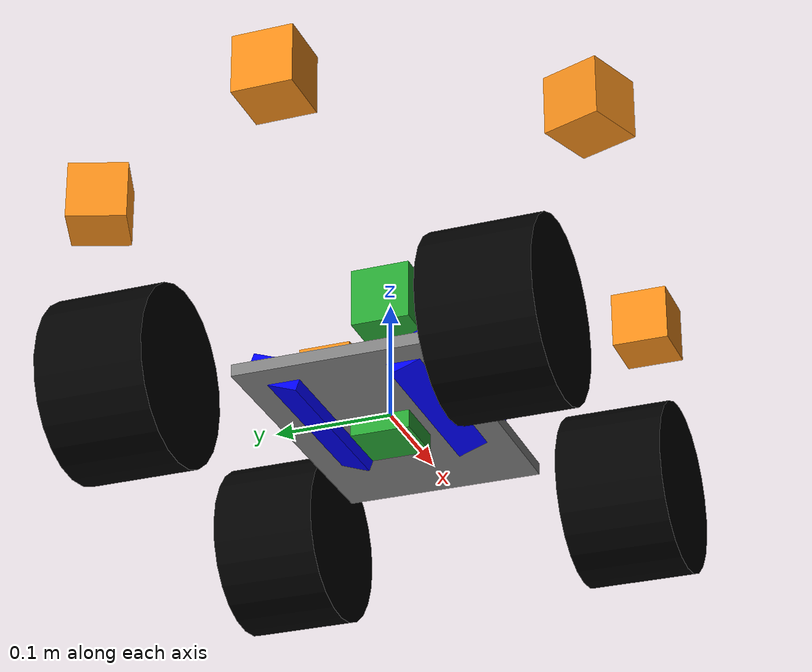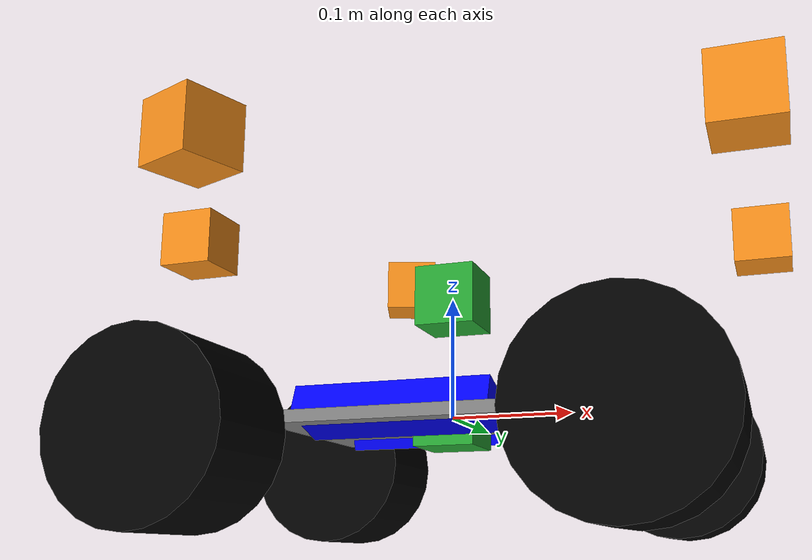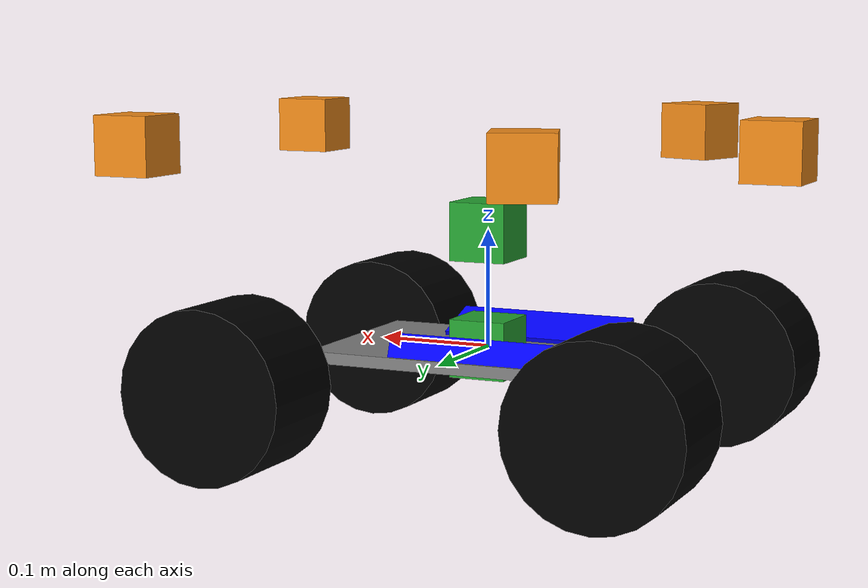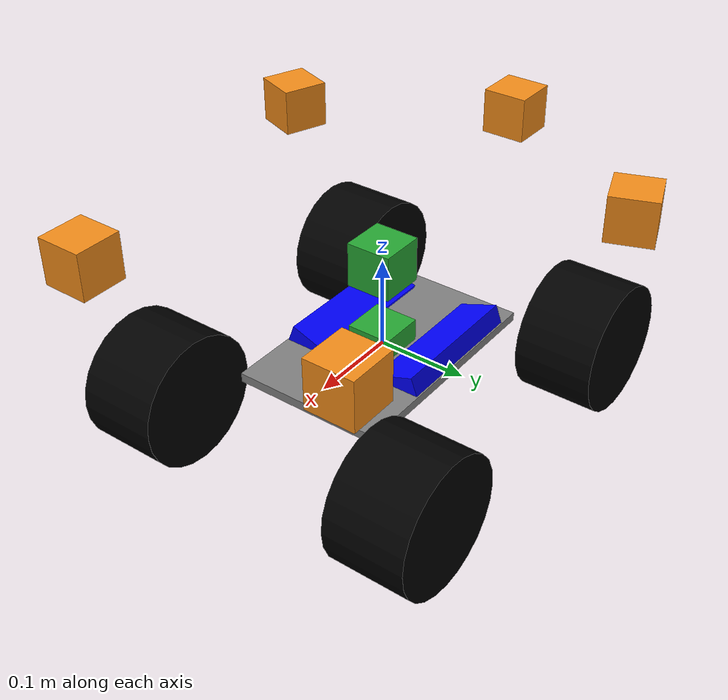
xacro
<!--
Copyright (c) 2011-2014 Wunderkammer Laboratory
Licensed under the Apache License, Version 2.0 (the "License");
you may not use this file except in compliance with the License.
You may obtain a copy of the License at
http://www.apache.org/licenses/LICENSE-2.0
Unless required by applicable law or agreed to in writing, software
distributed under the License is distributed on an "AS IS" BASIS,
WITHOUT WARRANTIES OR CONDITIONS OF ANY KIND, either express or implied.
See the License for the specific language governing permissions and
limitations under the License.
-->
<?xml version="1.0"?>

<robot name="em_3905" xmlns:xacro="http://www.ros.org/wiki/xacro">
  <!-- Degree-to-radian conversions -->
  <xacro:property name="degrees_45" value="0.785398163"/>
  <xacro:property name="degrees_90" value="1.57079633"/>

  <xacro:property name="cameraSize" value="0.05"/>
  <xacro:property name="cameraMass" value="0.1"/>

  <!-- chassis_length is measured along the x axis, chassis_width
       along the y axis, and chassis_height along the z axis. -->
  <xacro:property name="chassis_length" value="0.258"/>
  <xacro:property name="chassis_width" value="0.168"/>
  <xacro:property name="chassis_height" value="0.01"/>
  <xacro:property name="chassis_mass" value="2.788"/>

  <xacro:property name="battery_x_offset" value="0.055"/>
  <xacro:property name="battery_dist" value="0.065"/>
  <xacro:property name="battery_comp_depth" value="0.02"/>
  <xacro:property name="battery_comp_angle" value="0.34906585"/>
  <xacro:property name="battery_length" value="0.16"/>
  <xacro:property name="battery_width" value="0.047"/>
  <xacro:property name="battery_height" value="0.024"/>
  <xacro:property name="battery_mass" value="0.5025"/>

  <xacro:property name="hub_dia" value="0.09652"/>
  <xacro:property name="tire_dia" value="0.14605"/>
  <xacro:property name="tire_width" value="0.0889"/>
  <xacro:property name="hex_hub_depth" value="0.01445"/>
  <xacro:property name="wheel_mass" value="0.29"/>

  <xacro:property name="wheelbase" value="0.335"/>
  <xacro:property name="hex_hub_dist" value="0.365"/>
  <xacro:property name="axle_length" value="0.03"/>
  <xacro:property name="wheel_travel" value="0.084"/>
  <xacro:property name="shock_z_offset" value="0.0655"/>

  <xacro:property name="shock_eff_limit" value="12.5106"/>
  <xacro:property name="shock_vel_limit" value="1000"/>

  <xacro:property name="axle_eff_limit" value="5.12766"/>
  <xacro:property name="axle_vel_limit" value="244.8696"/>

  <!-- These constants are used to simulate a Traxxas 2056 servo operated at
       6 V. servo_stall_torque is measured in N m. servo_no_load_speed is
       measured in rad/s. -->
  <xacro:property name="servo_stall_torque" value="0.5649"/>
  <xacro:property name="servo_no_load_speed" value="4.553"/>

  <material name="battery_mat">
    <color rgba="0 0 1 1"/>
  </material>
  <material name="chassis_mat">
    <color rgba="0.5 0.5 0.5 1"/>
  </material>
  <material name="tire_mat">
    <color rgba="0 0 0 1"/>
  </material>

  <!-- Null inertial element. This is needed to make the model work with
       Gazebo. -->
  <xacro:macro name="null_inertial">
    <inertial>
      <mass value="0.001"/>
      <inertia ixx="0.001" ixy="0" ixz="0" iyy="0.001" iyz="0" izz="0.001"/>
    </inertial>
  </xacro:macro>

  <!-- Inertia of a solid cuboid. Width is measured along the x axis, depth
       along the y axis, and height along the z axis. -->
  <xacro:macro name="solid_cuboid_inertial"
               params="width depth height mass *origin">
    <inertial>
      <xacro:insert_block name="origin"/>
      <mass value="${mass}"/>
      <inertia ixx="${mass * (depth * depth + height * height) / 12}"
               ixy="0" ixz="0"
               iyy="${mass * (width * width + height * height) / 12}"
               iyz="0"
               izz="${mass * (width * width + depth * depth) / 12}"/>
    </inertial>
  </xacro:macro>

  <xacro:macro name="thick_walled_tube_inertial"
               params="inner_rad outer_rad height mass">
    <inertial>
      <mass value="${mass}"/>
      <inertia ixx="${(1 / 12) * mass * (3 * (inner_rad * inner_rad +
                    outer_rad * outer_rad) + height * height)}"
               ixy="0" ixz="0"
               iyy="${(1 / 12) * mass * (3 * (inner_rad * inner_rad +
                    outer_rad * outer_rad) + height * height)}"
               iyz="0"
               izz="${mass * (inner_rad * inner_rad +
                    outer_rad * outer_rad) / 2}"/>
    </inertial>
  </xacro:macro>

  <!-- Battery -->
  <xacro:macro name="battery" params="prefix reflect">
    <joint name="chassis_to_${prefix}_battery" type="fixed">
      <parent link="chassis"/>
      <child link="${prefix}_battery_offset"/>
      <origin xyz="${battery_x_offset - battery_length / 2}
                   ${reflect * battery_dist / 2}
                   0"
              rpy="${reflect * battery_comp_angle} 0 0"/>
    </joint>

    <link name="${prefix}_battery_offset">
      <xacro:null_inertial/>
    </link>

    <joint name="offset_to_${prefix}_battery" type="fixed">
      <parent link="${prefix}_battery_offset"/>
      <child link="${prefix}_battery"/>
      <origin xyz="0
                   ${reflect * battery_width / 2}
                   ${(battery_height / 2) - battery_comp_depth}"/>
    </joint>

    <link name="${prefix}_battery">
      <visual>
        <geometry>
          <box size="${battery_length} ${battery_width} ${battery_height}"/>
        </geometry>
        <material name="battery_mat"/>
      </visual>

      <collision>
        <geometry>
          <box size="${battery_length} ${battery_width} ${battery_height}"/>
        </geometry>
      </collision>

      <xacro:solid_cuboid_inertial
         width="${battery_length}" depth="${battery_width}"
         height="${battery_height}" mass="${battery_mass}">
        <origin/>
      </xacro:solid_cuboid_inertial>
    </link>

    <gazebo reference="${prefix}_battery">
      <material>Gazebo/Blue</material>
    </gazebo>
  </xacro:macro>

  <!-- Shock absorber -->
  <xacro:macro name="shock"
               params="lr_prefix fr_prefix lr_reflect fr_reflect child">
    <joint name="${lr_prefix}_${fr_prefix}_shock" type="prismatic">
      <parent link="chassis"/>
      <child link="${child}"/>

      <origin xyz="${fr_reflect * wheelbase / 2}
                   ${lr_reflect * ((hex_hub_dist / 2) - axle_length)}
                   ${(wheel_travel / 2) - shock_z_offset}"/>
      <axis xyz="0 0 -1"/>
      <limit lower="${-wheel_travel / 2}" upper="${wheel_travel / 2}"
             effort="${shock_eff_limit}" velocity="${shock_vel_limit}"/>
    </joint>
    <transmission name="${lr_prefix}_${fr_prefix}_shock_trans">
      <type>transmission_interface/SimpleTransmission</type>
      <joint name="${lr_prefix}_${fr_prefix}_shock">
        <hardwareInterface>EffortJointInterface</hardwareInterface>
      </joint>
      <actuator name="${lr_prefix}_${fr_prefix}_shock_act">
        <!-- This hardwareInterface element exists for compatibility
             with ROS Hydro. -->
        <hardwareInterface>EffortJointInterface</hardwareInterface>
        <mechanicalReduction>1</mechanicalReduction>
      </actuator>
    </transmission>
  </xacro:macro>

  <!-- The "wheel" macro defines an axle carrier, axle, and wheel. -->
  <xacro:macro name="wheel" params="lr_prefix fr_prefix lr_reflect">
    <link name="${lr_prefix}_${fr_prefix}_axle_carrier">
      <xacro:null_inertial/>
    </link>

    <!-- The left and right axles have the same axis so that identical
         rotation values cause the wheels to rotate in the same direction. -->
    <joint name="${lr_prefix}_${fr_prefix}_axle" type="continuous">
      <parent link="${lr_prefix}_${fr_prefix}_axle_carrier"/>
      <child link="${lr_prefix}_${fr_prefix}_wheel"/>
      <origin rpy="${degrees_90} 0 0"/>
      <axis xyz="0 0 -1"/>
      <limit effort="${axle_eff_limit}" velocity="${axle_vel_limit}"/>
    </joint>
    <transmission name="${lr_prefix}_${fr_prefix}_axle_trans">
      <type>transmission_interface/SimpleTransmission</type>
      <joint name="${lr_prefix}_${fr_prefix}_axle">
        <hardwareInterface>EffortJointInterface</hardwareInterface>
      </joint>
      <actuator name="${lr_prefix}_${fr_prefix}_axle_act">
        <!-- This hardwareInterface element exists for compatibility
             with ROS Hydro. -->
        <hardwareInterface>EffortJointInterface</hardwareInterface>
        <mechanicalReduction>1</mechanicalReduction>
      </actuator>
    </transmission>

    <link name="${lr_prefix}_${fr_prefix}_wheel">
      <visual>
        <origin xyz="0
                     ${lr_reflect * (axle_length - (tire_width /
                     2 - hex_hub_depth))}
                     0"/>
        <geometry>
          <cylinder radius="${tire_dia / 2}" length="${tire_width}"/>
        </geometry>
        <material name="tire_mat"/>
      </visual>

      <collision>
        <origin xyz="0
                     ${lr_reflect * (axle_length - (tire_width /
                     2 - hex_hub_depth))}
                     0"/>
        <geometry>
          <cylinder radius="${tire_dia / 2}" length="${tire_width}"/>
        </geometry>
      </collision>

      <xacro:thick_walled_tube_inertial
          inner_rad="${hub_dia / 2}" outer_rad="${tire_dia / 2}"
          height="${tire_width}" mass="${wheel_mass}"/>
    </link>

    <gazebo reference="${lr_prefix}_${fr_prefix}_wheel">
      <material>Gazebo/Black</material>
    </gazebo>
  </xacro:macro>

  <!-- Front wheel -->
  <xacro:macro name="front_wheel"
               params="lr_prefix fr_prefix lr_reflect fr_reflect">
    <xacro:shock lr_prefix="${lr_prefix}" fr_prefix="${fr_prefix}"
                 lr_reflect="${lr_reflect}" fr_reflect="${fr_reflect}"
                 child="${lr_prefix}_steering_link"/>

    <link name="${lr_prefix}_steering_link">
      <xacro:null_inertial/>
    </link>

    <joint name="${lr_prefix}_steering_joint" type="revolute">
      <parent link="${lr_prefix}_steering_link"/>
      <child link="${lr_prefix}_${fr_prefix}_axle_carrier"/>
      <axis xyz="0 0 1"/>
      <limit lower="${-degrees_45}" upper="${degrees_45}"
             effort="${servo_stall_torque}" velocity="${servo_no_load_speed}"/>
    </joint>
    <transmission name="${lr_prefix}_steering_trans">
      <type>transmission_interface/SimpleTransmission</type>
      <joint name="${lr_prefix}_steering_joint">
        <hardwareInterface>EffortJointInterface</hardwareInterface>
      </joint>
      <actuator name="${lr_prefix}_steering_act">
        <!-- This hardwareInterface element exists for compatibility
             with ROS Hydro. -->
        <hardwareInterface>EffortJointInterface</hardwareInterface>
        <mechanicalReduction>1</mechanicalReduction>
      </actuator>
    </transmission>

    <xacro:wheel lr_prefix="${lr_prefix}" fr_prefix="${fr_prefix}"
                 lr_reflect="${lr_reflect}"/>
  </xacro:macro>

  <!-- Rear wheel -->
  <xacro:macro name="rear_wheel"
               params="lr_prefix fr_prefix lr_reflect fr_reflect">
    <xacro:shock lr_prefix="${lr_prefix}" fr_prefix="${fr_prefix}"
                 lr_reflect="${lr_reflect}" fr_reflect="${fr_reflect}"
                 child="${lr_prefix}_${fr_prefix}_axle_carrier"/>
    <xacro:wheel lr_prefix="${lr_prefix}" fr_prefix="${fr_prefix}"
                 lr_reflect="${lr_reflect}"/>
  </xacro:macro>

  <!-- base_link must have geometry so that its axes can be displayed in
       rviz. -->
  <link name="base_link">
    <visual>
      <geometry>
        <box size="0.01 0.01 0.01"/>
      </geometry>
      <material name="chassis_mat"/>
    </visual>
  </link>
  <gazebo reference="base_link">
    <material>Gazebo/Grey</material>
  </gazebo>

  <!-- Chassis -->
  <link name="chassis">
    <visual>
      <origin xyz="0 0 ${-chassis_height / 2}"/>
      <geometry>
        <box size="${chassis_length} ${chassis_width} ${chassis_height}"/>
      </geometry>
      <material name="chassis_mat"/>
    </visual>

    <collision>
      <origin xyz="0 0 ${-chassis_height / 2}"/>
      <geometry>
        <box size="${chassis_length} ${chassis_width} ${chassis_height}"/>
      </geometry>
    </collision>

    <xacro:solid_cuboid_inertial
        width="${chassis_length}" depth="${chassis_width}"
        height="${chassis_height}" mass="${chassis_mass}">
      <origin xyz="0 0 ${-chassis_height / 2}"/>
    </xacro:solid_cuboid_inertial>
  </link>
  <gazebo reference="chassis">
    <material>Gazebo/Grey</material>
  </gazebo>

  <joint name="base_link_to_chassis" type="fixed">
    <parent link="base_link"/>
    <child link="chassis"/>
  </joint>

  <!-- Batteries -->
  <xacro:battery prefix="left" reflect="1"/>
  <xacro:battery prefix="right" reflect="-1"/>

  <!-- Wheels -->
  <xacro:front_wheel lr_prefix="left" fr_prefix="front"
                     lr_reflect="1" fr_reflect="1"/>
  <xacro:front_wheel lr_prefix="right" fr_prefix="front"
                     lr_reflect="-1" fr_reflect="1"/>
  <xacro:rear_wheel lr_prefix="left" fr_prefix="rear"
                    lr_reflect="1" fr_reflect="-1"/>
  <xacro:rear_wheel lr_prefix="right" fr_prefix="rear"
                    lr_reflect="-1" fr_reflect="-1"/>

  <xacro:property name="height1" value="0.05" />
  <xacro:property name="width" value="0.05" />

 <!-- Base Link -->

  <link name="gps">
    <collision>
      <origin xyz="0 0 0" rpy="0 0 0"/>
      <geometry>
        <box size="${cameraSize} ${cameraSize} ${cameraSize}"/>
      </geometry>
    </collision>

    <visual>
      <origin xyz="0 0 0" rpy="0 0 0"/>
      <geometry>
        <box size="${cameraSize} ${cameraSize} ${cameraSize}"/>
      </geometry>
      <material name="green"/>
    </visual>

    <inertial>
      <mass value="${cameraMass}" />
      <origin xyz="0 0 0" rpy="0 0 0"/>
      <box_inertia m="${cameraMass}" x="${cameraSize}" y="${cameraSize}" z="${cameraSize}" />
      <inertia ixx="1e-6" ixy="0" ixz="0" iyy="1e-6" iyz="0" izz="1e-6" />
    </inertial>
  </link>

  <joint name="gps_joint" type="fixed">
    <axis xyz="0 1 0" />
    <origin xyz="0 0 0.1" rpy="0 0 0"/>
    <parent link="chassis"/>
    <child link="gps"/>
  </joint>

  <gazebo>
      <plugin name="gazebo_ros_gps" filename="libhector_gazebo_ros_gps.so">
          <updateRate>4.0</updateRate>
          <bodyName>gps</bodyName>
          <frameId>gps</frameId>
          <topicName>/gps/fix</topicName>
          <velocityTopicName>/gps/fix_velocity</velocityTopicName>
          <referenceLatitude>-30.06022459407145675</referenceLatitude>
          <referenceLongitude>-51.173913575780311191</referenceLongitude>
          <referenceHeading>90</referenceHeading>
          <referenceAltitude>10</referenceAltitude>
          <offset>0 0 0</offset>
          <drift>0.001 0.001 0.001</drift>
          <gaussianNoise>0.5 0.5 0.5</gaussianNoise>
          <velocityDrift>0.001 0.001 0.001</velocityDrift>
          <velocityGaussianNoise>0.5 0.5 0.5</velocityGaussianNoise>
      </plugin>
  </gazebo>

  <link name="imu">
    <collision>
      <origin xyz="0 0 0" rpy="0 0 0"/>
      <geometry>
        <box size="${cameraSize} ${cameraSize} ${cameraSize}"/>
      </geometry>
    </collision>

    <visual>
      <origin xyz="0 0 0" rpy="0 0 0"/>
      <geometry>
        <box size="${cameraSize} ${cameraSize} ${cameraSize}"/>
      </geometry>
      <material name="green"/>
    </visual>

    <inertial>
      <mass value="${cameraMass}" />
      <origin xyz="0 0 0" rpy="0 0 0"/>
      <box_inertia m="${cameraMass}" x="${cameraSize}" y="${cameraSize}" z="${cameraSize}" />
      <inertia ixx="1e-6" ixy="0" ixz="0" iyy="1e-6" iyz="0" izz="1e-6" />
    </inertial>
  </link>

  <joint name="imu_joint" type="fixed">
    <axis xyz="0 1 0" />
    <origin xyz="0 0 0.0" rpy="0 0 0"/>
    <parent link="chassis"/>
    <child link="imu"/>
  </joint>

 <xacro:property name="height_sonar" value="0.05" />
  <xacro:property name="width_sonar" value="0.05" />
  <xacro:property name="name5" value="sonar5" />
  <xacro:property name="name1" value="sonar1" />
  <xacro:property name="name2" value="sonar2" />
  <xacro:property name="name3" value="sonar3" />
  <xacro:property name="name4" value="sonar4" />
  <xacro:property name="ros_topic5" value="/sonar_frontR_distance" />
  <xacro:property name="ros_topic1" value="/sonar_frontL_distance" />
  <xacro:property name="ros_topic2" value="/sonar_left_distance" />
  <xacro:property name="ros_topic3" value="/sonar_right_distance" />
  <xacro:property name="ros_topic4" value="/sonar_back_distance" />
  <xacro:property name="update_rate" value="10" />
  <xacro:property name="min_range" value="0.02" />
  <xacro:property name="max_range" value="4.5" />
  <xacro:property name="field_of_view" value="0.0" />
  <xacro:property name="ray_count" value="1" />

  <!-- Base Link -->
  <link name="${name5}_link">
      <inertial>
        <mass value="0.001" />
        <origin xyz="0 0 0" rpy="0 0 0" />
        <inertia ixx="0.000000017" ixy="0" ixz="0" iyy="0.000000017" iyz="0" izz="0.000000017" />
      </inertial>
        <visual>
          <origin xyz="0 0 ${height_sonar/2}" rpy="0 0 0"/>
          <geometry>
            <box size="${width_sonar} ${width_sonar} ${height_sonar}"/>
          </geometry>
          <material name="orange"/>
        </visual>
      <collision>
        <origin xyz="0 0 0" rpy="0 0 0" />
        <geometry>
          <box size="0.01 0.01 0.01" />
        </geometry>
      </collision>
  </link>

  <joint name="${name5}_joint" type="fixed">
    <axis xyz="0 1 0" />
    <origin xyz=".25 -.15 0.15" rpy="0 0 0"/>
    <parent link="chassis"/>
    <child link="${name5}_link"/>
  </joint>

    <gazebo reference="${name5}_link">
      <sensor type="ray" name="${name5}">
        <always_on>true</always_on>
        <update_rate>${update_rate}</update_rate>
        <pose>0 0 0 0 0 0</pose>
        <visualize>true</visualize>
        <ray>
          <scan>
            <horizontal>
              <samples>${ray_count}</samples>
              <resolution>1</resolution>
              <min_angle>-${field_of_view/2}</min_angle>
              <max_angle> ${field_of_view/2}</max_angle>
            </horizontal>
            <vertical>
              <samples>${ray_count}</samples>
              <resolution>1</resolution>
              <min_angle>-${field_of_view/2}</min_angle>
              <max_angle> ${field_of_view/2}</max_angle>
            </vertical>
          </scan>
          <range>
            <min>${min_range}</min>
            <max>${max_range}</max>
            <resolution>0.01</resolution>
          </range>
        </ray>

        <plugin name="gazebo_ros_${name5}_controller" filename="libhector_gazebo_ros_sonar.so">
          <gaussianNoise>0.005</gaussianNoise>
          <topicName>${ros_topic5}</topicName>
          <frameId>${name5}_link</frameId>
        </plugin>
      </sensor>
    </gazebo>

  <!-- Base Link -->
  <link name="${name1}_link">
      <inertial>
        <mass value="0.001" />
        <origin xyz="0 0 0" rpy="0 0 0" />
        <inertia ixx="0.000000017" ixy="0" ixz="0" iyy="0.000000017" iyz="0" izz="0.000000017" />
      </inertial>
        <visual>
          <origin xyz="0 0 ${height_sonar/2}" rpy="0 0 0"/>
          <geometry>
            <box size="${width_sonar} ${width_sonar} ${height_sonar}"/>
          </geometry>
          <material name="orange"/>
        </visual>
      <collision>
        <origin xyz="0 0 0" rpy="0 0 0" />
        <geometry>
          <box size="0.01 0.01 0.01" />
        </geometry>
      </collision>
  </link>

  <joint name="${name1}_joint" type="fixed">
    <axis xyz="0 1 0" />
    <origin xyz=".25 .15 0.15" rpy="0 0 0"/>
    <parent link="chassis"/>
    <child link="${name1}_link"/>
  </joint>

    <gazebo reference="${name1}_link">
      <sensor type="ray" name="${name1}">
        <always_on>true</always_on>
        <update_rate>${update_rate}</update_rate>
        <pose>0 0 0 0 0 0</pose>
        <visualize>true</visualize>
        <ray>
          <scan>
            <horizontal>
              <samples>${ray_count}</samples>
              <resolution>1</resolution>
              <min_angle>-${field_of_view/2}</min_angle>
              <max_angle> ${field_of_view/2}</max_angle>
            </horizontal>
            <vertical>
              <samples>${ray_count}</samples>
              <resolution>1</resolution>
              <min_angle>-${field_of_view/2}</min_angle>
              <max_angle> ${field_of_view/2}</max_angle>
            </vertical>
          </scan>
          <range>
            <min>${min_range}</min>
            <max>${max_range}</max>
            <resolution>0.01</resolution>
          </range>
        </ray>

        <plugin name="gazebo_ros_${name1}_controller" filename="libhector_gazebo_ros_sonar.so">
          <gaussianNoise>0.005</gaussianNoise>
          <topicName>${ros_topic1}</topicName>
          <frameId>${name1}_link</frameId>
        </plugin>
      </sensor>
    </gazebo>

  <!-- Base Link -->
  <link name="${name2}_link">
      <inertial>
        <mass value="0.001" />
        <origin xyz="0 0 0" rpy="0 0 0" />
        <inertia ixx="0.000000017" ixy="0" ixz="0" iyy="0.000000017" iyz="0" izz="0.000000017" />
      </inertial>
        <visual>
          <origin xyz="0 0 ${height_sonar/2}" rpy="0 0 0"/>
          <geometry>
            <box size="${width_sonar} ${width_sonar} ${height_sonar}"/>
          </geometry>
          <material name="orange"/>
        </visual>
      <collision>
        <origin xyz="0 0 0" rpy="0 0 0" />
        <geometry>
          <box size="0.01 0.01 0.01" />
        </geometry>
      </collision>
  </link>

  <joint name="${name2}_joint" type="fixed">
    <axis xyz="0 1 0" />
    <origin xyz="-.12 .21 0.15" rpy="0 0 0.349"/>
    <parent link="chassis"/>
    <child link="${name2}_link"/>
  </joint>

    <gazebo reference="${name2}_link">
      <sensor type="ray" name="${name2}">
        <always_on>true</always_on>
        <update_rate>${update_rate}</update_rate>
        <pose>0 0 0 0 0 0</pose>
        <visualize>true</visualize>
        <ray>
          <scan>
            <horizontal>
              <samples>${ray_count}</samples>
              <resolution>1</resolution>
              <min_angle>-${field_of_view/2}</min_angle>
              <max_angle> ${field_of_view/2}</max_angle>
            </horizontal>
            <vertical>
              <samples>${ray_count}</samples>
              <resolution>1</resolution>
              <min_angle>-${field_of_view/2}</min_angle>
              <max_angle> ${field_of_view/2}</max_angle>
            </vertical>
          </scan>
          <range>
            <min>${min_range}</min>
            <max>${max_range}</max>
            <resolution>0.01</resolution>
          </range>
        </ray>

        <plugin name="gazebo_ros_${name2}_controller" filename="libhector_gazebo_ros_sonar.so">
          <gaussianNoise>0.005</gaussianNoise>
          <topicName>${ros_topic2}</topicName>
          <bodyName>sonar</bodyName>
          <serviceName>sonar_service</serviceName>
          <frameId>${name2}_link</frameId>
        </plugin>
      </sensor>
    </gazebo>

  <link name="${name3}_link">
      <inertial>
        <mass value="0.001" />
        <origin xyz="0 0 0" rpy="0 0 0" />
        <inertia ixx="0.000000017" ixy="0" ixz="0" iyy="0.000000017" iyz="0" izz="0.000000017" />
      </inertial>
        <visual>
          <origin xyz="0 0 ${height_sonar/2}" rpy="0 0 0"/>
          <geometry>
            <box size="${width_sonar} ${width_sonar} ${height_sonar}"/>
          </geometry>
          <material name="orange"/>
        </visual>
      <collision>
        <origin xyz="0 0 0" rpy="0 0 0" />
        <geometry>
          <box size="0.01 0.01 0.01" />
        </geometry>
      </collision>
  </link>

  <joint name="${name3}_joint" type="fixed">
    <axis xyz="0 1 0" />
     <origin xyz="-.12 -.21 0.15" rpy="0 0 -0.349"/>
    <parent link="chassis"/>
    <child link="${name3}_link"/>
  </joint>

    <gazebo reference="${name3}_link">
      <sensor type="ray" name="${name3}">
        <always_on>true</always_on>
        <update_rate>${update_rate}</update_rate>
        <pose>0 0 0 0 0 0</pose>
        <visualize>true</visualize>
        <ray>
          <scan>
            <horizontal>
              <samples>${ray_count}</samples>
              <resolution>1</resolution>
              <min_angle>-${field_of_view/2}</min_angle>
              <max_angle> ${field_of_view/2}</max_angle>
            </horizontal>
            <vertical>
              <samples>${ray_count}</samples>
              <resolution>1</resolution>
              <min_angle>-${field_of_view/2}</min_angle>
              <max_angle> ${field_of_view/2}</max_angle>
            </vertical>
          </scan>
          <range>
            <min>${min_range}</min>
            <max>${max_range}</max>
            <resolution>0.01</resolution>
          </range>
        </ray>

        <plugin name="gazebo_ros_${name3}_controller" filename="libhector_gazebo_ros_sonar.so">
          <gaussianNoise>0.005</gaussianNoise>
          <topicName>${ros_topic3}</topicName>
          <bodyName>sonar</bodyName>
          <serviceName>sonar_service</serviceName>
          <frameId>${name3}_link</frameId>
        </plugin>
      </sensor>
    </gazebo>

  <link name="${name4}_link">
      <inertial>
        <mass value="0.001" />
        <origin xyz="0 0 0" rpy="0 0 0" />
        <inertia ixx="0.000000017" ixy="0" ixz="0" iyy="0.000000017" iyz="0" izz="0.000000017" />
      </inertial>
        <visual>
          <origin xyz="0 0 ${height_sonar/2}" rpy="0 0 0"/>
          <geometry>
            <box size="${width_sonar} ${width_sonar} ${height_sonar}"/>
          </geometry>
          <material name="orange"/>
        </visual>
      <collision>
        <origin xyz="0 0 0" rpy="0 0 0" />
        <geometry>
          <box size="0.01 0.01 0.01" />
        </geometry>
      </collision>
  </link>

  <joint name="${name4}_joint" type="fixed">
    <axis xyz="0 1 0" />
     <origin xyz="-.25 0 0.15" rpy="0 0 3.14"/>
    <parent link="chassis"/>
    <child link="${name4}_link"/>
  </joint>

    <gazebo reference="${name4}_link">
      <sensor type="ray" name="${name4}">
        <always_on>true</always_on>
        <update_rate>${update_rate}</update_rate>
        <pose>0 0 0 0 0 0</pose>
        <visualize>true</visualize>
        <ray>
          <scan>
            <horizontal>
              <samples>${ray_count}</samples>
              <resolution>1</resolution>
              <min_angle>-${field_of_view/2}</min_angle>
              <max_angle> ${field_of_view/2}</max_angle>
            </horizontal>
            <vertical>
              <samples>${ray_count}</samples>
              <resolution>1</resolution>
              <min_angle>-${field_of_view/2}</min_angle>
              <max_angle> ${field_of_view/2}</max_angle>
            </vertical>
          </scan>
          <range>
            <min>${min_range}</min>
            <max>${max_range}</max>
            <resolution>0.01</resolution>
          </range>
        </ray>

        <plugin name="gazebo_ros_${name4}_controller" filename="libhector_gazebo_ros_sonar.so">
          <gaussianNoise>0.005</gaussianNoise>
          <topicName>${ros_topic4}</topicName>
          <bodyName>sonar</bodyName>
          <serviceName>sonar_service</serviceName>
          <frameId>${name4}_link</frameId>
        </plugin>
      </sensor>
    </gazebo>

  <gazebo>
    <plugin name="imu_plugin" filename="libgazebo_ros_imu.so">
      <alwaysOn>true</alwaysOn>
      <bodyName>imu</bodyName>
      <topicName>imu/data</topicName>
      <serviceName>imu_service</serviceName>
      <gaussianNoise>0.05</gaussianNoise>
      <updateRate>20.0</updateRate>
    </plugin>
  </gazebo>

  <gazebo>
    <plugin name="gazebo_ros_control" filename="libgazebo_ros_control.so"/>
  </gazebo>

</robot>
